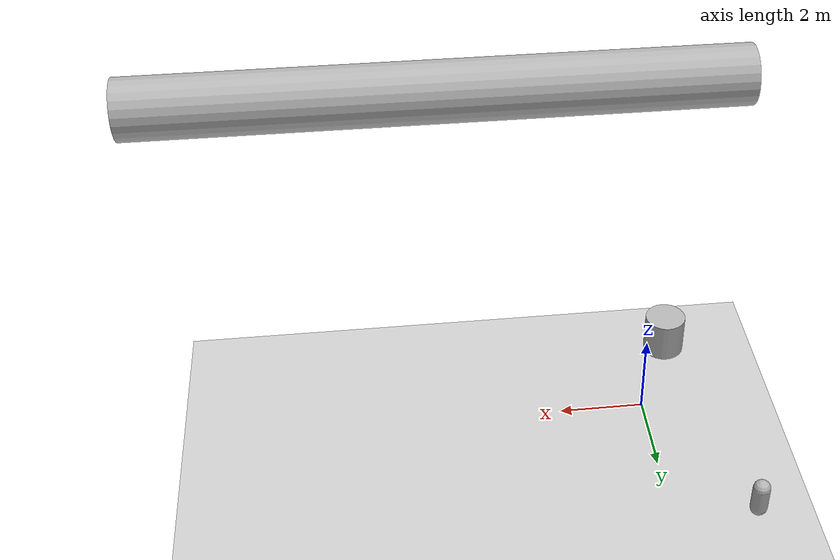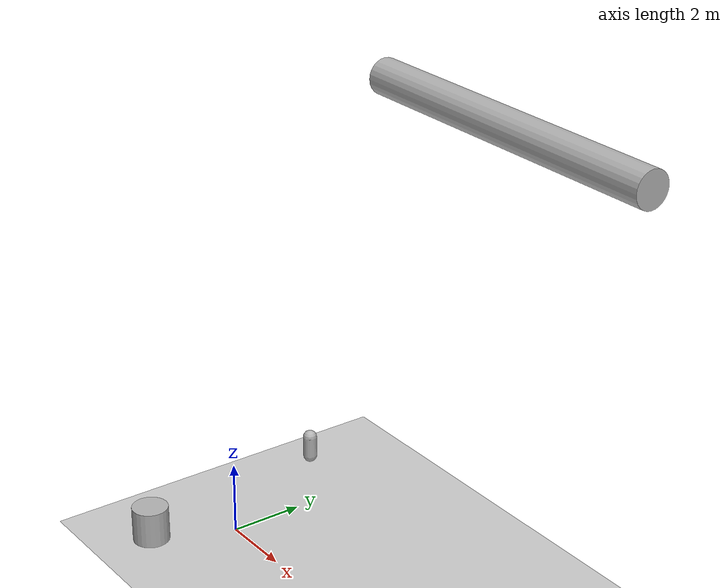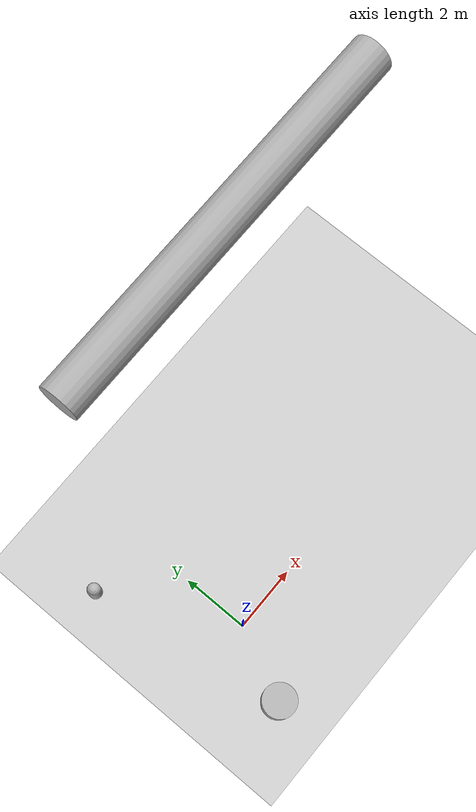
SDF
<sdf version='1.9'>
  <world name='default'>
    <physics name='1ms' type='ignored'>
      <max_step_size>0.001</max_step_size>
      <real_time_factor>1</real_time_factor>
      <real_time_update_rate>1000</real_time_update_rate>
    </physics>
    <gravity>0 0 -9.8</gravity>
    <magnetic_field>6e-06 2.3e-05 -4.2e-05</magnetic_field>
    <atmosphere type='adiabatic'/>
    <scene>
      <ambient>0.4 0.4 0.4 1</ambient>
      <background>0.7 0.7 0.7 1</background>
      <shadows>true</shadows>
    </scene>
    <model name='ground_plane'>
      <static>true</static>
      <link name='link'>
        <collision name='collision'>
          <geometry>
            <plane>
              <normal>0 0 1</normal>
              <size>100 100</size>
            </plane>
          </geometry>
          <surface>
            <friction>
              <ode/>
            </friction>
            <bounce/>
            <contact/>
          </surface>
        </collision>
        <visual name='visual'>
          <geometry>
            <plane>
              <normal>0 0 1</normal>
              <size>100 100</size>
            </plane>
          </geometry>
          <material>
            <ambient>0.8 0.8 0.8 1</ambient>
            <diffuse>0.8 0.8 0.8 1</diffuse>
            <specular>0.8 0.8 0.8 1</specular>
          </material>
        </visual>
        <pose>0 0 0 0 -0 0</pose>
        <inertial>
          <pose>0 0 0 0 -0 0</pose>
          <mass>1</mass>
          <inertia>
            <ixx>1</ixx>
            <ixy>0</ixy>
            <ixz>0</ixz>
            <iyy>1</iyy>
            <iyz>0</iyz>
            <izz>1</izz>
          </inertia>
        </inertial>
        <enable_wind>false</enable_wind>
      </link>
      <pose>0 0 0 0 -0 0</pose>
      <self_collide>false</self_collide>
    </model>
    <model name='cylinder'>
      <pose>5 5 12 0 1.57 0</pose>
      <link name='cylinder_link'>
        <inertial>
          <inertia>
            <ixx>0.14580000000000001</ixx>
            <ixy>0</ixy>
            <ixz>0</ixz>
            <iyy>0.14580000000000001</iyy>
            <iyz>0</iyz>
            <izz>0.125</izz>
          </inertia>
          <mass>1</mass>
          <pose>0 0 0 0 -0 0</pose>
        </inertial>
        <collision name='cylinder_collision'>
          <geometry>
            <cylinder>
              <radius>0.5</radius>
              <length>10</length>
            </cylinder>
          </geometry>
          <surface>
            <friction>
              <ode>
               <max_vel>20</max_vel>
               <min_depth>0.0</min_depth>
              </ode>
            </friction>
            <bounce/>
            <contact/>
          </surface>
        </collision>
        <visual name='cylinder_visual'>
          <geometry>
            <cylinder>
              <radius>0.5</radius>
              <length>10</length>
            </cylinder>
          </geometry>
          <material>
            <ambient>0.3 0.3 0.3 1</ambient>
            <diffuse>0.7 0.7 0.7 1</diffuse>
            <specular>1 1 1 1</specular>
          </material>
        </visual>
        <pose>0 0 0 0 -0 0</pose>
        <enable_wind>false</enable_wind>
      </link>
      <static>true</static>
      <self_collide>true</self_collide>
    </model>
    <model name='capsule'>
      <pose>-1.93015 3.76118 0.5 0 -0 0</pose>
      <link name='capsule_link'>
        <inertial>
          <inertia>
            <ixx>0.074153999999999998</ixx>
            <ixy>0</ixy>
            <ixz>0</ixz>
            <iyy>0.074153999999999998</iyy>
            <iyz>0</iyz>
            <izz>0.018769000000000001</izz>
          </inertia>
          <mass>1</mass>
          <pose>0 0 0 0 -0 0</pose>
        </inertial>
        <collision name='capsule_collision'>
          <geometry>
            <capsule>
              <radius>0.20000000000000001</radius>
              <length>0.59999999999999998</length>
            </capsule>
          </geometry>
          <surface>
            <friction>
              <ode/>
            </friction>
            <bounce/>
            <contact/>
          </surface>
        </collision>
        <visual name='capsule_visual'>
          <geometry>
            <capsule>
              <radius>0.20000000000000001</radius>
              <length>0.59999999999999998</length>
            </capsule>
          </geometry>
          <material>
            <ambient>0.3 0.3 0.3 1</ambient>
            <diffuse>0.7 0.7 0.7 1</diffuse>
            <specular>1 1 1 1</specular>
          </material>
        </visual>
        <pose>0 0 0 0 -0 0</pose>
        <enable_wind>false</enable_wind>
      </link>
      <static>false</static>
      <self_collide>false</self_collide>
    </model>
    <model name='cylinder_0'>
      <pose>-0.972166 -2.0937 0.499999 -0 0 0</pose>
      <link name='cylinder_link'>
        <inertial>
          <inertia>
            <ixx>0.14580000000000001</ixx>
            <ixy>0</ixy>
            <ixz>0</ixz>
            <iyy>0.14580000000000001</iyy>
            <iyz>0</iyz>
            <izz>0.125</izz>
          </inertia>
          <mass>1</mass>
          <pose>0 0 0 0 -0 0</pose>
        </inertial>
        <collision name='cylinder_collision'>
          <geometry>
            <cylinder>
              <radius>0.5</radius>
              <length>1</length>
            </cylinder>
          </geometry>
          <surface>
            <friction>
              <ode/>
            </friction>
            <bounce/>
            <contact/>
          </surface>
        </collision>
        <visual name='cylinder_visual'>
          <geometry>
            <cylinder>
              <radius>0.5</radius>
              <length>1</length>
            </cylinder>
          </geometry>
          <material>
            <ambient>0.3 0.3 0.3 1</ambient>
            <diffuse>0.7 0.7 0.7 1</diffuse>
            <specular>1 1 1 1</specular>
          </material>
        </visual>
        <pose>0 0 0 0 -0 0</pose>
        <enable_wind>false</enable_wind>
      </link>
      <static>false</static>
      <self_collide>false</self_collide>
    </model>
    <light name='sun' type='directional'>
      <pose>0 0 10 0 -0 0</pose>
      <cast_shadows>true</cast_shadows>
      <intensity>1</intensity>
      <direction>-0.5 0.1 -0.9</direction>
      <diffuse>0.8 0.8 0.8 1</diffuse>
      <specular>0.2 0.2 0.2 1</specular>
      <attenuation>
        <range>1000</range>
        <linear>0.01</linear>
        <constant>0.90000000000000002</constant>
        <quadratic>0.001</quadratic>
      </attenuation>
      <spot>
        <inner_angle>0</inner_angle>
        <outer_angle>0</outer_angle>
        <falloff>0</falloff>
      </spot>
    </light>
  </world>
</sdf>
